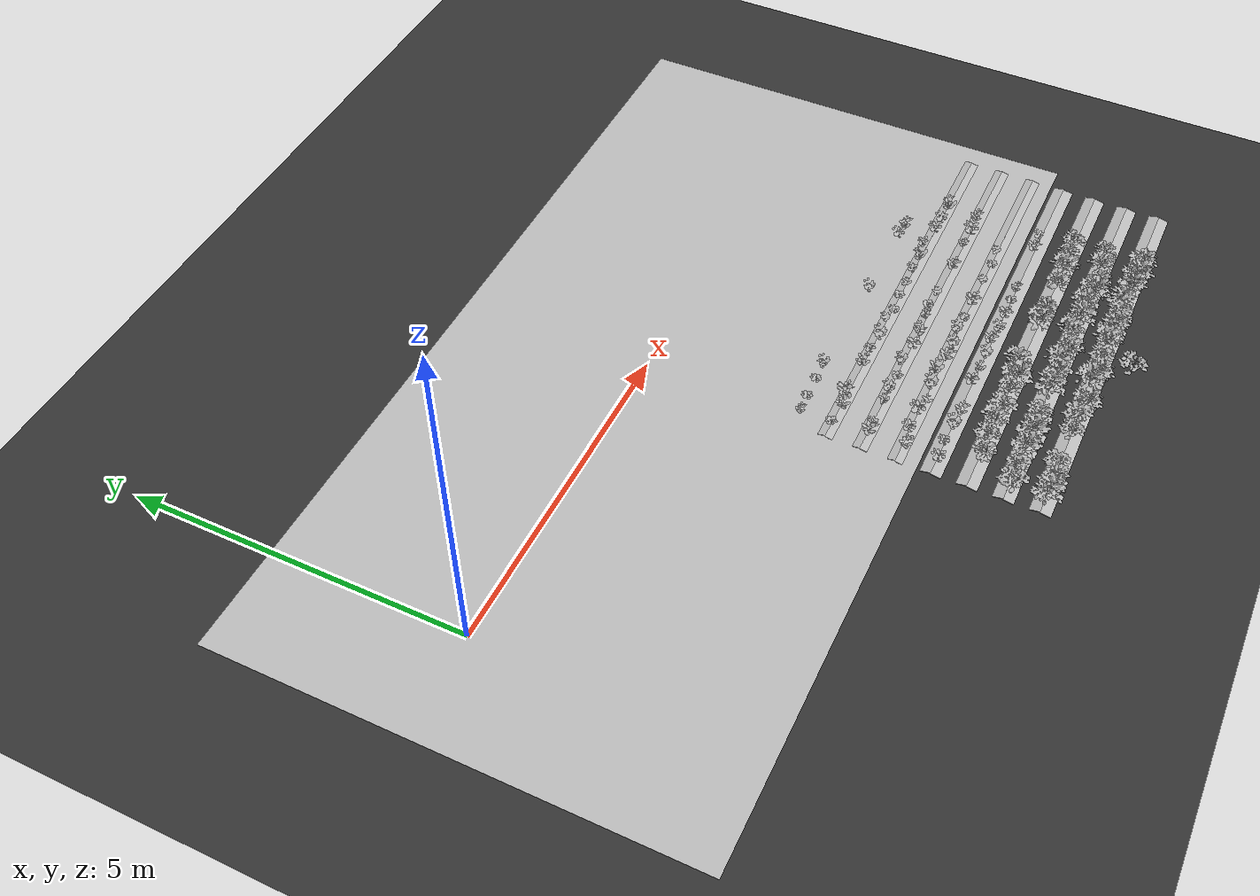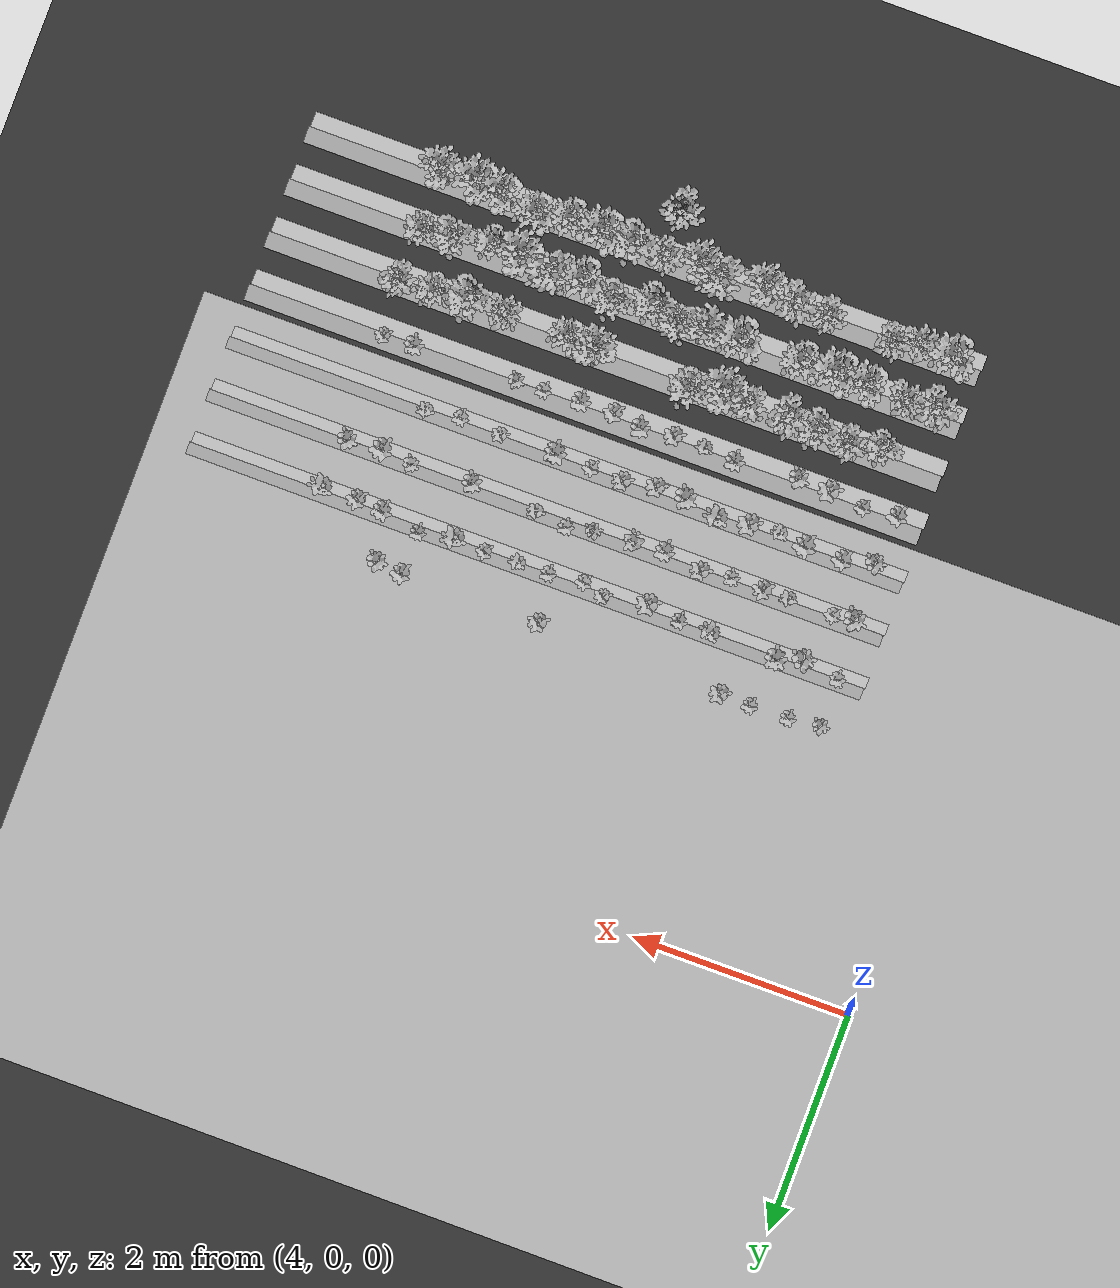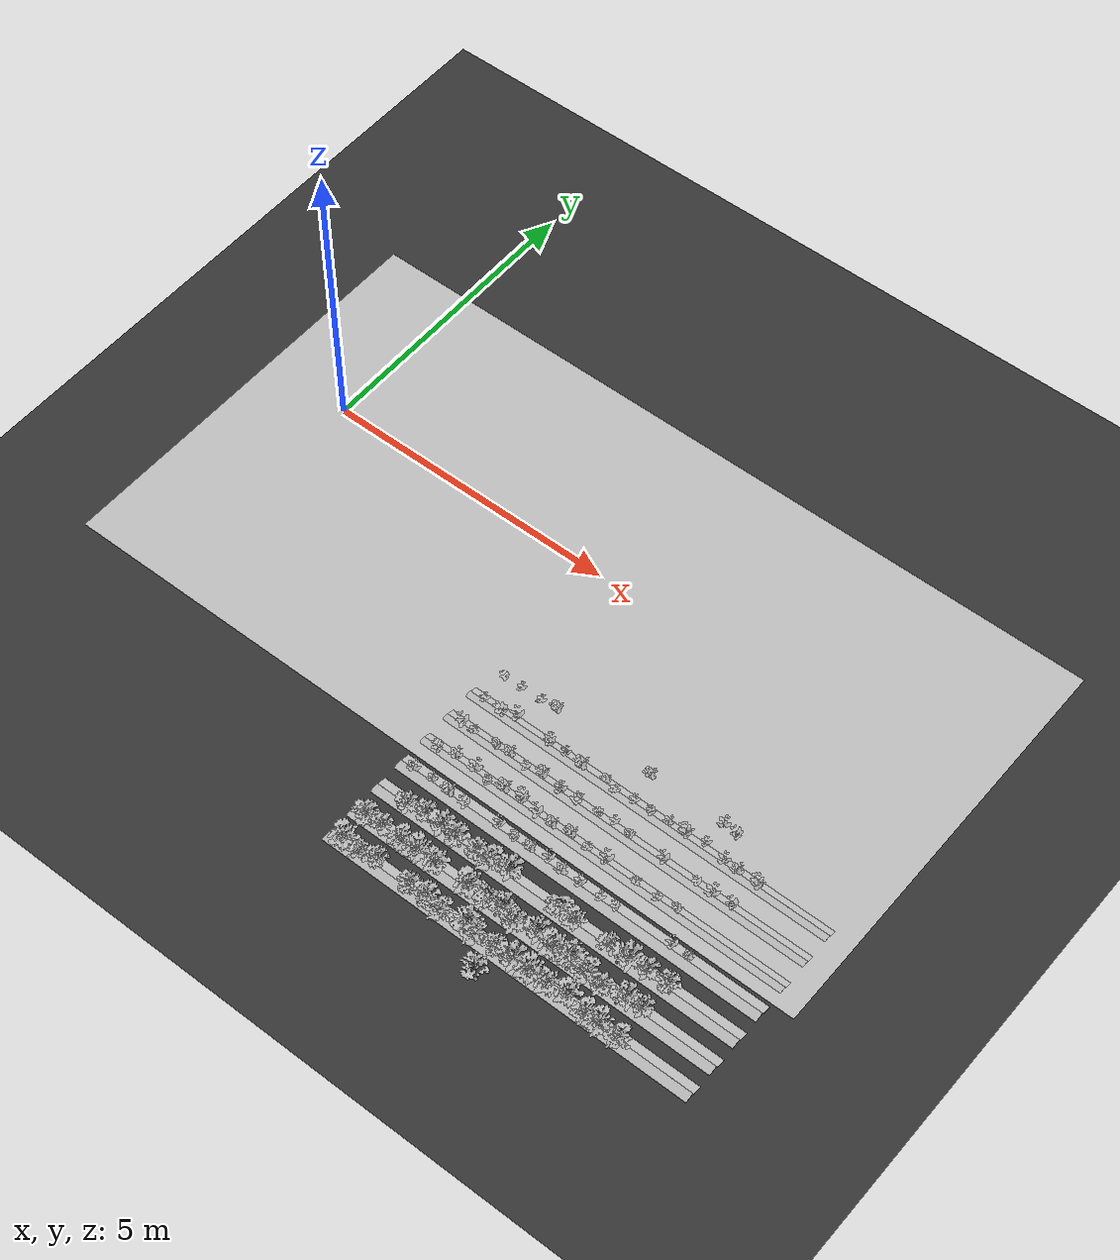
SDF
<sdf version="1.7">
 <world name="default">
  <model name="ground_plane">
   <static>1</static>
   <link name="link">
    <collision name="collision">
     <geometry><plane><normal>0 0 1</normal><size>100 100</size></plane></geometry>
     <surface>
      <contact><collide_bitmask>65535</collide_bitmask></contact>
      <friction><ode><mu>100</mu><mu2>50</mu2></ode></friction>
     </surface>
    </collision>
    <visual name="visual">
     <cast_shadows>0</cast_shadows>
     <geometry><plane><normal>0 0 1</normal><size>100 100</size></plane></geometry>
     <material>
      <ambient>0.2 0.2 0.2 1.0</ambient>
      <diffuse>0.2 0.2 0.2 1.0</diffuse>
      <specular>0.2 0.2 0.2 1.0</specular>
      <emissive>0.2 0.2 0.2 1.0</emissive>
     </material>
    </visual>
   </link>
  </model>
  <model name="ground">
   <pose>5 -0.5 0.01  3.141592654 0 0</pose>
   <static>true</static>
   <link name="body">
    <visual name="visual">
     <cast_shadows>0</cast_shadows>
     <geometry>
      <mesh><uri>file:///home/ifcosta/final_ws/src/cnn_line/worlds/models/ground.obj</uri></mesh>
     </geometry>
    </visual>
   </link>
  </model>
  <model name="plt_10017">
   <pose>5.1 -4.27 0.0129 0.0 0.0 0.11031</pose>
   <static>true</static>
   <link name="body">
    <visual name="visual">
     <geometry>
      <mesh><uri>file:///home/ifcosta/final_ws/src/cnn_line/worlds/models/plant12.obj</uri></mesh>
     </geometry>
    </visual>
   </link>
  </model>
  <model name="plt_10018">
   <pose>5.41 -4.24 0.0167 0.0 0.0 0.10898</pose>
   <static>true</static>
   <link name="body">
    <visual name="visual">
     <geometry>
      <mesh><uri>file:///home/ifcosta/final_ws/src/cnn_line/worlds/models/plant11.obj</uri></mesh>
     </geometry>
    </visual>
   </link>
  </model>
  <model name="plt_10019">
   <pose>5.73 -4.27 0.012 0.0 0.0 -0.63378</pose>
   <static>true</static>
   <link name="body">
    <visual name="visual">
     <geometry>
      <mesh><uri>file:///home/ifcosta/final_ws/src/cnn_line/worlds/models/plant13.obj</uri></mesh>
     </geometry>
    </visual>
   </link>
  </model>
  <model name="plt_10020">
   <pose>6.03 -4.28 0.0152 0.0 0.0 1.1343</pose>
   <static>true</static>
   <link name="body">
    <visual name="visual">
     <geometry>
      <mesh><uri>file:///home/ifcosta/final_ws/src/cnn_line/worlds/models/plant12.obj</uri></mesh>
     </geometry>
    </visual>
   </link>
  </model>
  <model name="plt_10022">
   <pose>6.61 -4.23 0.0153 0.0 0.0 0.51671</pose>
   <static>true</static>
   <link name="body">
    <visual name="visual">
     <geometry>
      <mesh><uri>file:///home/ifcosta/final_ws/src/cnn_line/worlds/models/plant12.obj</uri></mesh>
     </geometry>
    </visual>
   </link>
  </model>
  <model name="plt_10023">
   <pose>6.89 -4.26 0.0155 0.0 0.0 -1.4487</pose>
   <static>true</static>
   <link name="body">
    <visual name="visual">
     <geometry>
      <mesh><uri>file:///home/ifcosta/final_ws/src/cnn_line/worlds/models/plant11.obj</uri></mesh>
     </geometry>
    </visual>
   </link>
  </model>
  <model name="plt_10024">
   <pose>7.18 -4.26 0.0155 0.0 0.0 -0.59258</pose>
   <static>true</static>
   <link name="body">
    <visual name="visual">
     <geometry>
      <mesh><uri>file:///home/ifcosta/final_ws/src/cnn_line/worlds/models/plant12.obj</uri></mesh>
     </geometry>
    </visual>
   </link>
  </model>
  <model name="plt_10025">
   <pose>7.49 -4.22 0.0176 0.0 0.0 0.74149</pose>
   <static>true</static>
   <link name="body">
    <visual name="visual">
     <geometry>
      <mesh><uri>file:///home/ifcosta/final_ws/src/cnn_line/worlds/models/plant12.obj</uri></mesh>
     </geometry>
    </visual>
   </link>
  </model>
  <model name="plt_10026">
   <pose>7.75 -4.27 0.0115 0.0 0.0 -0.22559</pose>
   <static>true</static>
   <link name="body">
    <visual name="visual">
     <geometry>
      <mesh><uri>file:///home/ifcosta/final_ws/src/cnn_line/worlds/models/plant12.obj</uri></mesh>
     </geometry>
    </visual>
   </link>
  </model>
  <model name="plt_10027">
   <pose>8.06 -4.26 0.0198 0.0 0.0 0.52255</pose>
   <static>true</static>
   <link name="body">
    <visual name="visual">
     <geometry>
      <mesh><uri>file:///home/ifcosta/final_ws/src/cnn_line/worlds/models/plant12.obj</uri></mesh>
     </geometry>
    </visual>
   </link>
  </model>
  <model name="plt_10028">
   <pose>8.4 -4.25 0.0158 0.0 0.0 0.34888</pose>
   <static>true</static>
   <link name="body">
    <visual name="visual">
     <geometry>
      <mesh><uri>file:///home/ifcosta/final_ws/src/cnn_line/worlds/models/plant10.obj</uri></mesh>
     </geometry>
    </visual>
   </link>
  </model>
  <model name="plt_10029">
   <pose>8.66 -4.24 0.0158 0.0 0.0 1.1464</pose>
   <static>true</static>
   <link name="body">
    <visual name="visual">
     <geometry>
      <mesh><uri>file:///home/ifcosta/final_ws/src/cnn_line/worlds/models/plant11.obj</uri></mesh>
     </geometry>
    </visual>
   </link>
  </model>
  <model name="plt_10032">
   <pose>9.61 -4.22 0.014 0.0 0.0 0.66716</pose>
   <static>true</static>
   <link name="body">
    <visual name="visual">
     <geometry>
      <mesh><uri>file:///home/ifcosta/final_ws/src/cnn_line/worlds/models/plant12.obj</uri></mesh>
     </geometry>
    </visual>
   </link>
  </model>
  <model name="plt_10033">
   <pose>9.89 -4.22 0.014 0.0 0.0 -0.3081</pose>
   <static>true</static>
   <link name="body">
    <visual name="visual">
     <geometry>
      <mesh><uri>file:///home/ifcosta/final_ws/src/cnn_line/worlds/models/plant11.obj</uri></mesh>
     </geometry>
    </visual>
   </link>
  </model>
  <model name="slope_434">
   <pose>8.0 -4.25 -0.005 0.0 0.0 0.0</pose>
   <static>true</static>
   <link name="body">
    <visual name="visual">
     <geometry>
      <mesh><uri>file:///home/ifcosta/final_ws/src/cnn_line/worlds/models/slope.obj</uri></mesh>
     </geometry>
    </visual>
   </link>
  </model>
  <model name="slope_534">
   <pose>8.0 -4.25 -0.005 0.0 0.0 3.1416</pose>
   <static>true</static>
   <link name="body">
    <visual name="visual">
     <geometry>
      <mesh><uri>file:///home/ifcosta/final_ws/src/cnn_line/worlds/models/slope.obj</uri></mesh>
     </geometry>
    </visual>
   </link>
  </model>
  <model name="plt_10051">
   <pose>5.14 -3.8 0.0164 0.0 0.0 1.5601</pose>
   <static>true</static>
   <link name="body">
    <visual name="visual">
     <geometry>
      <mesh><uri>file:///home/ifcosta/final_ws/src/cnn_line/worlds/models/plant12.obj</uri></mesh>
     </geometry>
    </visual>
   </link>
  </model>
  <model name="plt_10052">
   <pose>5.42 -3.74 0.0171 0.0 0.0 -0.0023712</pose>
   <static>true</static>
   <link name="body">
    <visual name="visual">
     <geometry>
      <mesh><uri>file:///home/ifcosta/final_ws/src/cnn_line/worlds/models/plant12.obj</uri></mesh>
     </geometry>
    </visual>
   </link>
  </model>
  <model name="plt_10053">
   <pose>5.77 -3.74 0.0141 0.0 0.0 0.089069</pose>
   <static>true</static>
   <link name="body">
    <visual name="visual">
     <geometry>
      <mesh><uri>file:///home/ifcosta/final_ws/src/cnn_line/worlds/models/plant13.obj</uri></mesh>
     </geometry>
    </visual>
   </link>
  </model>
  <model name="plt_10054">
   <pose>6.01 -3.78 0.0155 0.0 0.0 -1.603</pose>
   <static>true</static>
   <link name="body">
    <visual name="visual">
     <geometry>
      <mesh><uri>file:///home/ifcosta/final_ws/src/cnn_line/worlds/models/plant10.obj</uri></mesh>
     </geometry>
    </visual>
   </link>
  </model>
  <model name="plt_10055">
   <pose>6.29 -3.75 0.015 0.0 0.0 -0.609</pose>
   <static>true</static>
   <link name="body">
    <visual name="visual">
     <geometry>
      <mesh><uri>file:///home/ifcosta/final_ws/src/cnn_line/worlds/models/plant13.obj</uri></mesh>
     </geometry>
    </visual>
   </link>
  </model>
  <model name="plt_10056">
   <pose>6.58 -3.71 0.0156 0.0 0.0 -1.4947</pose>
   <static>true</static>
   <link name="body">
    <visual name="visual">
     <geometry>
      <mesh><uri>file:///home/ifcosta/final_ws/src/cnn_line/worlds/models/plant13.obj</uri></mesh>
     </geometry>
    </visual>
   </link>
  </model>
  <model name="plt_10057">
   <pose>6.9 -3.77 0.0161 0.0 0.0 0.98929</pose>
   <static>true</static>
   <link name="body">
    <visual name="visual">
     <geometry>
      <mesh><uri>file:///home/ifcosta/final_ws/src/cnn_line/worlds/models/plant13.obj</uri></mesh>
     </geometry>
    </visual>
   </link>
  </model>
  <model name="plt_10058">
   <pose>7.17 -3.78 0.016 0.0 0.0 -0.61877</pose>
   <static>true</static>
   <link name="body">
    <visual name="visual">
     <geometry>
      <mesh><uri>file:///home/ifcosta/final_ws/src/cnn_line/worlds/models/plant12.obj</uri></mesh>
     </geometry>
    </visual>
   </link>
  </model>
  <model name="plt_10059">
   <pose>7.47 -3.73 0.0152 0.0 0.0 -0.60778</pose>
   <static>true</static>
   <link name="body">
    <visual name="visual">
     <geometry>
      <mesh><uri>file:///home/ifcosta/final_ws/src/cnn_line/worlds/models/plant12.obj</uri></mesh>
     </geometry>
    </visual>
   </link>
  </model>
  <model name="plt_10060">
   <pose>7.77 -3.75 0.014 0.0 0.0 0.033476</pose>
   <static>true</static>
   <link name="body">
    <visual name="visual">
     <geometry>
      <mesh><uri>file:///home/ifcosta/final_ws/src/cnn_line/worlds/models/plant10.obj</uri></mesh>
     </geometry>
    </visual>
   </link>
  </model>
  <model name="plt_10061">
   <pose>8.11 -3.75 0.0173 0.0 0.0 0.56324</pose>
   <static>true</static>
   <link name="body">
    <visual name="visual">
     <geometry>
      <mesh><uri>file:///home/ifcosta/final_ws/src/cnn_line/worlds/models/plant13.obj</uri></mesh>
     </geometry>
    </visual>
   </link>
  </model>
  <model name="plt_10063">
   <pose>8.62 -3.75 0.0153 0.0 0.0 -0.6554</pose>
   <static>true</static>
   <link name="body">
    <visual name="visual">
     <geometry>
      <mesh><uri>file:///home/ifcosta/final_ws/src/cnn_line/worlds/models/plant10.obj</uri></mesh>
     </geometry>
    </visual>
   </link>
  </model>
  <model name="plt_10064">
   <pose>9.0 -3.77 0.0196 0.0 0.0 0.34951</pose>
   <static>true</static>
   <link name="body">
    <visual name="visual">
     <geometry>
      <mesh><uri>file:///home/ifcosta/final_ws/src/cnn_line/worlds/models/plant10.obj</uri></mesh>
     </geometry>
    </visual>
   </link>
  </model>
  <model name="plt_10065">
   <pose>9.31 -3.73 0.0123 0.0 0.0 -1.0946</pose>
   <static>true</static>
   <link name="body">
    <visual name="visual">
     <geometry>
      <mesh><uri>file:///home/ifcosta/final_ws/src/cnn_line/worlds/models/plant10.obj</uri></mesh>
     </geometry>
    </visual>
   </link>
  </model>
  <model name="slope_468">
   <pose>8.0 -3.75 -0.005 0.0 0.0 0.0</pose>
   <static>true</static>
   <link name="body">
    <visual name="visual">
     <geometry>
      <mesh><uri>file:///home/ifcosta/final_ws/src/cnn_line/worlds/models/slope.obj</uri></mesh>
     </geometry>
    </visual>
   </link>
  </model>
  <model name="slope_568">
   <pose>8.0 -3.75 -0.005 0.0 0.0 3.1416</pose>
   <static>true</static>
   <link name="body">
    <visual name="visual">
     <geometry>
      <mesh><uri>file:///home/ifcosta/final_ws/src/cnn_line/worlds/models/slope.obj</uri></mesh>
     </geometry>
    </visual>
   </link>
  </model>
  <model name="plt_10085">
   <pose>5.14 -3.27 0.0163 0.0 0.0 1.1297</pose>
   <static>true</static>
   <link name="body">
    <visual name="visual">
     <geometry>
      <mesh><uri>file:///home/ifcosta/final_ws/src/cnn_line/worlds/models/plant13.obj</uri></mesh>
     </geometry>
    </visual>
   </link>
  </model>
  <model name="plt_10086">
   <pose>5.33 -3.26 0.0139 0.0 0.0 -0.073709</pose>
   <static>true</static>
   <link name="body">
    <visual name="visual">
     <geometry>
      <mesh><uri>file:///home/ifcosta/final_ws/src/cnn_line/worlds/models/plant10.obj</uri></mesh>
     </geometry>
    </visual>
   </link>
  </model>
  <model name="plt_10087">
   <pose>5.74 -3.26 0.0161 0.0 0.0 -1.1449</pose>
   <static>true</static>
   <link name="body">
    <visual name="visual">
     <geometry>
      <mesh><uri>file:///home/ifcosta/final_ws/src/cnn_line/worlds/models/plant11.obj</uri></mesh>
     </geometry>
    </visual>
   </link>
  </model>
  <model name="plt_10088">
   <pose>5.98 -3.25 0.0138 0.0 0.0 -0.32739</pose>
   <static>true</static>
   <link name="body">
    <visual name="visual">
     <geometry>
      <mesh><uri>file:///home/ifcosta/final_ws/src/cnn_line/worlds/models/plant12.obj</uri></mesh>
     </geometry>
    </visual>
   </link>
  </model>
  <model name="plt_10089">
   <pose>6.28 -3.26 0.012 0.0 0.0 0.69733</pose>
   <static>true</static>
   <link name="body">
    <visual name="visual">
     <geometry>
      <mesh><uri>file:///home/ifcosta/final_ws/src/cnn_line/worlds/models/plant10.obj</uri></mesh>
     </geometry>
    </visual>
   </link>
  </model>
  <model name="plt_10090">
   <pose>6.55 -3.22 0.0124 0.0 0.0 -0.75371</pose>
   <static>true</static>
   <link name="body">
    <visual name="visual">
     <geometry>
      <mesh><uri>file:///home/ifcosta/final_ws/src/cnn_line/worlds/models/plant12.obj</uri></mesh>
     </geometry>
    </visual>
   </link>
  </model>
  <model name="plt_10091">
   <pose>6.91 -3.27 0.0171 0.0 0.0 0.43154</pose>
   <static>true</static>
   <link name="body">
    <visual name="visual">
     <geometry>
      <mesh><uri>file:///home/ifcosta/final_ws/src/cnn_line/worlds/models/plant12.obj</uri></mesh>
     </geometry>
    </visual>
   </link>
  </model>
  <model name="plt_10092">
   <pose>7.19 -3.25 0.016 0.0 0.0 3.2665</pose>
   <static>true</static>
   <link name="body">
    <visual name="visual">
     <geometry>
      <mesh><uri>file:///home/ifcosta/final_ws/src/cnn_line/worlds/models/plant12.obj</uri></mesh>
     </geometry>
    </visual>
   </link>
  </model>
  <model name="plt_10093">
   <pose>7.56 -3.22 0.0167 0.0 0.0 1.775</pose>
   <static>true</static>
   <link name="body">
    <visual name="visual">
     <geometry>
      <mesh><uri>file:///home/ifcosta/final_ws/src/cnn_line/worlds/models/plant11.obj</uri></mesh>
     </geometry>
    </visual>
   </link>
  </model>
  <model name="plt_10094">
   <pose>7.8 -3.18 0.015 0.0 0.0 0.58934</pose>
   <static>true</static>
   <link name="body">
    <visual name="visual">
     <geometry>
      <mesh><uri>file:///home/ifcosta/final_ws/src/cnn_line/worlds/models/plant10.obj</uri></mesh>
     </geometry>
    </visual>
   </link>
  </model>
  <model name="plt_20094">
   <pose>7.8 -6.18 0.015 0.0 0.0 1.7887</pose>
   <static>true</static>
   <link name="body">
    <visual name="visual">
     <geometry>
      <mesh><uri>file:///home/ifcosta/final_ws/src/cnn_line/worlds/models/plant21.obj</uri></mesh>
     </geometry>
    </visual>
   </link>
  </model>
  <model name="plt_10095">
   <pose>8.09 -3.22 0.0172 0.0 0.0 -0.97627</pose>
   <static>true</static>
   <link name="body">
    <visual name="visual">
     <geometry>
      <mesh><uri>file:///home/ifcosta/final_ws/src/cnn_line/worlds/models/plant10.obj</uri></mesh>
     </geometry>
    </visual>
   </link>
  </model>
  <model name="plt_10097">
   <pose>8.71 -3.25 0.0126 0.0 0.0 0.91126</pose>
   <static>true</static>
   <link name="body">
    <visual name="visual">
     <geometry>
      <mesh><uri>file:///home/ifcosta/final_ws/src/cnn_line/worlds/models/plant12.obj</uri></mesh>
     </geometry>
    </visual>
   </link>
  </model>
  <model name="plt_10099">
   <pose>9.27 -3.23 0.0146 0.0 0.0 1.0455</pose>
   <static>true</static>
   <link name="body">
    <visual name="visual">
     <geometry>
      <mesh><uri>file:///home/ifcosta/final_ws/src/cnn_line/worlds/models/plant10.obj</uri></mesh>
     </geometry>
    </visual>
   </link>
  </model>
  <model name="plt_10100">
   <pose>9.55 -3.26 0.0164 0.0 0.0 0.11065</pose>
   <static>true</static>
   <link name="body">
    <visual name="visual">
     <geometry>
      <mesh><uri>file:///home/ifcosta/final_ws/src/cnn_line/worlds/models/plant13.obj</uri></mesh>
     </geometry>
    </visual>
   </link>
  </model>
  <model name="plt_10101">
   <pose>9.87 -3.23 0.0153 0.0 0.0 1.1529</pose>
   <static>true</static>
   <link name="body">
    <visual name="visual">
     <geometry>
      <mesh><uri>file:///home/ifcosta/final_ws/src/cnn_line/worlds/models/plant12.obj</uri></mesh>
     </geometry>
    </visual>
   </link>
  </model>
  <model name="slope_502">
   <pose>8.0 -3.25 -0.005 0.0 0.0 0.0</pose>
   <static>true</static>
   <link name="body">
    <visual name="visual">
     <geometry>
      <mesh><uri>file:///home/ifcosta/final_ws/src/cnn_line/worlds/models/slope.obj</uri></mesh>
     </geometry>
    </visual>
   </link>
  </model>
  <model name="slope_602">
   <pose>8.0 -3.25 -0.005 0.0 0.0 3.1416</pose>
   <static>true</static>
   <link name="body">
    <visual name="visual">
     <geometry>
      <mesh><uri>file:///home/ifcosta/final_ws/src/cnn_line/worlds/models/slope.obj</uri></mesh>
     </geometry>
    </visual>
   </link>
  </model>
  <model name="plt_10119">
   <pose>5.1 -2.74 0.017 0.0 0.0 0.54522</pose>
   <static>true</static>
   <link name="body">
    <visual name="visual">
     <geometry>
      <mesh><uri>file:///home/ifcosta/final_ws/src/cnn_line/worlds/models/plant10.obj</uri></mesh>
     </geometry>
    </visual>
   </link>
  </model>
  <model name="plt_20119">
   <pose>5.1 -5.74 0.017 0.0 0.0 0.064601</pose>
   <static>true</static>
   <link name="body">
    <visual name="visual">
     <geometry>
      <mesh><uri>file:///home/ifcosta/final_ws/src/cnn_line/worlds/models/plant22.obj</uri></mesh>
     </geometry>
    </visual>
   </link>
  </model>
  <model name="plt_10120">
   <pose>5.44 -2.78 0.0122 0.0 0.0 1.6965</pose>
   <static>true</static>
   <link name="body">
    <visual name="visual">
     <geometry>
      <mesh><uri>file:///home/ifcosta/final_ws/src/cnn_line/worlds/models/plant13.obj</uri></mesh>
     </geometry>
    </visual>
   </link>
  </model>
  <model name="plt_20120">
   <pose>5.44 -5.78 0.0122 0.0 0.0 2.2285</pose>
   <static>true</static>
   <link name="body">
    <visual name="visual">
     <geometry>
      <mesh><uri>file:///home/ifcosta/final_ws/src/cnn_line/worlds/models/plant20.obj</uri></mesh>
     </geometry>
    </visual>
   </link>
  </model>
  <model name="plt_10121">
   <pose>5.67 -2.71 0.0162 0.0 0.0 0.72011</pose>
   <static>true</static>
   <link name="body">
    <visual name="visual">
     <geometry>
      <mesh><uri>file:///home/ifcosta/final_ws/src/cnn_line/worlds/models/plant13.obj</uri></mesh>
     </geometry>
    </visual>
   </link>
  </model>
  <model name="plt_20121">
   <pose>5.67 -5.71 0.0162 0.0 0.0 1.378</pose>
   <static>true</static>
   <link name="body">
    <visual name="visual">
     <geometry>
      <mesh><uri>file:///home/ifcosta/final_ws/src/cnn_line/worlds/models/plant20.obj</uri></mesh>
     </geometry>
    </visual>
   </link>
  </model>
  <model name="plt_10123">
   <pose>6.28 -2.74 0.0147 0.0 0.0 -1.8378</pose>
   <static>true</static>
   <link name="body">
    <visual name="visual">
     <geometry>
      <mesh><uri>file:///home/ifcosta/final_ws/src/cnn_line/worlds/models/plant12.obj</uri></mesh>
     </geometry>
    </visual>
   </link>
  </model>
  <model name="plt_20123">
   <pose>6.28 -5.74 0.0147 0.0 0.0 1.0146</pose>
   <static>true</static>
   <link name="body">
    <visual name="visual">
     <geometry>
      <mesh><uri>file:///home/ifcosta/final_ws/src/cnn_line/worlds/models/plant20.obj</uri></mesh>
     </geometry>
    </visual>
   </link>
  </model>
  <model name="plt_10124">
   <pose>6.58 -2.74 0.0153 0.0 0.0 0.38056</pose>
   <static>true</static>
   <link name="body">
    <visual name="visual">
     <geometry>
      <mesh><uri>file:///home/ifcosta/final_ws/src/cnn_line/worlds/models/plant11.obj</uri></mesh>
     </geometry>
    </visual>
   </link>
  </model>
  <model name="plt_20124">
   <pose>6.58 -5.74 0.0153 0.0 0.0 2.2212</pose>
   <static>true</static>
   <link name="body">
    <visual name="visual">
     <geometry>
      <mesh><uri>file:///home/ifcosta/final_ws/src/cnn_line/worlds/models/plant21.obj</uri></mesh>
     </geometry>
    </visual>
   </link>
  </model>
  <model name="plt_10125">
   <pose>6.88 -2.78 0.0126 0.0 0.0 -0.57333</pose>
   <static>true</static>
   <link name="body">
    <visual name="visual">
     <geometry>
      <mesh><uri>file:///home/ifcosta/final_ws/src/cnn_line/worlds/models/plant13.obj</uri></mesh>
     </geometry>
    </visual>
   </link>
  </model>
  <model name="plt_20125">
   <pose>6.88 -5.78 0.0126 0.0 0.0 -1.4349</pose>
   <static>true</static>
   <link name="body">
    <visual name="visual">
     <geometry>
      <mesh><uri>file:///home/ifcosta/final_ws/src/cnn_line/worlds/models/plant21.obj</uri></mesh>
     </geometry>
    </visual>
   </link>
  </model>
  <model name="plt_10126">
   <pose>7.28 -2.72 0.0137 0.0 0.0 -0.49948</pose>
   <static>true</static>
   <link name="body">
    <visual name="visual">
     <geometry>
      <mesh><uri>file:///home/ifcosta/final_ws/src/cnn_line/worlds/models/plant10.obj</uri></mesh>
     </geometry>
    </visual>
   </link>
  </model>
  <model name="plt_20126">
   <pose>7.28 -5.72 0.0137 0.0 0.0 1.8079</pose>
   <static>true</static>
   <link name="body">
    <visual name="visual">
     <geometry>
      <mesh><uri>file:///home/ifcosta/final_ws/src/cnn_line/worlds/models/plant22.obj</uri></mesh>
     </geometry>
    </visual>
   </link>
  </model>
  <model name="plt_10127">
   <pose>7.48 -2.78 0.0137 0.0 0.0 0.036919</pose>
   <static>true</static>
   <link name="body">
    <visual name="visual">
     <geometry>
      <mesh><uri>file:///home/ifcosta/final_ws/src/cnn_line/worlds/models/plant10.obj</uri></mesh>
     </geometry>
    </visual>
   </link>
  </model>
  <model name="plt_20127">
   <pose>7.48 -5.78 0.0137 0.0 0.0 -1.3525</pose>
   <static>true</static>
   <link name="body">
    <visual name="visual">
     <geometry>
      <mesh><uri>file:///home/ifcosta/final_ws/src/cnn_line/worlds/models/plant21.obj</uri></mesh>
     </geometry>
    </visual>
   </link>
  </model>
  <model name="plt_10128">
   <pose>7.8 -2.74 0.0154 0.0 0.0 0.47096</pose>
   <static>true</static>
   <link name="body">
    <visual name="visual">
     <geometry>
      <mesh><uri>file:///home/ifcosta/final_ws/src/cnn_line/worlds/models/plant10.obj</uri></mesh>
     </geometry>
    </visual>
   </link>
  </model>
  <model name="plt_20128">
   <pose>7.8 -5.74 0.0154 0.0 0.0 1.2598</pose>
   <static>true</static>
   <link name="body">
    <visual name="visual">
     <geometry>
      <mesh><uri>file:///home/ifcosta/final_ws/src/cnn_line/worlds/models/plant20.obj</uri></mesh>
     </geometry>
    </visual>
   </link>
  </model>
  <model name="plt_10129">
   <pose>8.08 -2.74 0.0173 0.0 0.0 -1.4767</pose>
   <static>true</static>
   <link name="body">
    <visual name="visual">
     <geometry>
      <mesh><uri>file:///home/ifcosta/final_ws/src/cnn_line/worlds/models/plant10.obj</uri></mesh>
     </geometry>
    </visual>
   </link>
  </model>
  <model name="plt_20129">
   <pose>8.08 -5.74 0.0173 0.0 0.0 0.85855</pose>
   <static>true</static>
   <link name="body">
    <visual name="visual">
     <geometry>
      <mesh><uri>file:///home/ifcosta/final_ws/src/cnn_line/worlds/models/plant22.obj</uri></mesh>
     </geometry>
    </visual>
   </link>
  </model>
  <model name="plt_10130">
   <pose>8.39 -2.73 0.0108 0.0 0.0 -0.14243</pose>
   <static>true</static>
   <link name="body">
    <visual name="visual">
     <geometry>
      <mesh><uri>file:///home/ifcosta/final_ws/src/cnn_line/worlds/models/plant11.obj</uri></mesh>
     </geometry>
    </visual>
   </link>
  </model>
  <model name="plt_20130">
   <pose>8.39 -5.73 0.0108 0.0 0.0 -0.083382</pose>
   <static>true</static>
   <link name="body">
    <visual name="visual">
     <geometry>
      <mesh><uri>file:///home/ifcosta/final_ws/src/cnn_line/worlds/models/plant22.obj</uri></mesh>
     </geometry>
    </visual>
   </link>
  </model>
  <model name="plt_10131">
   <pose>8.68 -2.74 0.0159 0.0 0.0 -1.1712</pose>
   <static>true</static>
   <link name="body">
    <visual name="visual">
     <geometry>
      <mesh><uri>file:///home/ifcosta/final_ws/src/cnn_line/worlds/models/plant13.obj</uri></mesh>
     </geometry>
    </visual>
   </link>
  </model>
  <model name="plt_20131">
   <pose>8.68 -5.74 0.0159 0.0 0.0 -0.36344</pose>
   <static>true</static>
   <link name="body">
    <visual name="visual">
     <geometry>
      <mesh><uri>file:///home/ifcosta/final_ws/src/cnn_line/worlds/models/plant21.obj</uri></mesh>
     </geometry>
    </visual>
   </link>
  </model>
  <model name="plt_10132">
   <pose>9.0 -2.68 0.0154 0.0 0.0 0.49364</pose>
   <static>true</static>
   <link name="body">
    <visual name="visual">
     <geometry>
      <mesh><uri>file:///home/ifcosta/final_ws/src/cnn_line/worlds/models/plant11.obj</uri></mesh>
     </geometry>
    </visual>
   </link>
  </model>
  <model name="plt_20132">
   <pose>9.0 -5.68 0.0154 0.0 0.0 -0.54308</pose>
   <static>true</static>
   <link name="body">
    <visual name="visual">
     <geometry>
      <mesh><uri>file:///home/ifcosta/final_ws/src/cnn_line/worlds/models/plant21.obj</uri></mesh>
     </geometry>
    </visual>
   </link>
  </model>
  <model name="plt_10133">
   <pose>9.36 -2.75 0.0143 0.0 0.0 0.25934</pose>
   <static>true</static>
   <link name="body">
    <visual name="visual">
     <geometry>
      <mesh><uri>file:///home/ifcosta/final_ws/src/cnn_line/worlds/models/plant12.obj</uri></mesh>
     </geometry>
    </visual>
   </link>
  </model>
  <model name="plt_20133">
   <pose>9.36 -5.75 0.0143 0.0 0.0 -1.0471</pose>
   <static>true</static>
   <link name="body">
    <visual name="visual">
     <geometry>
      <mesh><uri>file:///home/ifcosta/final_ws/src/cnn_line/worlds/models/plant21.obj</uri></mesh>
     </geometry>
    </visual>
   </link>
  </model>
  <model name="plt_10134">
   <pose>9.6 -2.77 0.0186 0.0 0.0 -0.18332</pose>
   <static>true</static>
   <link name="body">
    <visual name="visual">
     <geometry>
      <mesh><uri>file:///home/ifcosta/final_ws/src/cnn_line/worlds/models/plant12.obj</uri></mesh>
     </geometry>
    </visual>
   </link>
  </model>
  <model name="plt_20134">
   <pose>9.6 -5.77 0.0186 0.0 0.0 -0.38918</pose>
   <static>true</static>
   <link name="body">
    <visual name="visual">
     <geometry>
      <mesh><uri>file:///home/ifcosta/final_ws/src/cnn_line/worlds/models/plant22.obj</uri></mesh>
     </geometry>
    </visual>
   </link>
  </model>
  <model name="plt_10135">
   <pose>9.93 -2.77 0.0165 0.0 0.0 -1.4356</pose>
   <static>true</static>
   <link name="body">
    <visual name="visual">
     <geometry>
      <mesh><uri>file:///home/ifcosta/final_ws/src/cnn_line/worlds/models/plant13.obj</uri></mesh>
     </geometry>
    </visual>
   </link>
  </model>
  <model name="plt_20135">
   <pose>9.93 -5.77 0.0165 0.0 0.0 -1.3645</pose>
   <static>true</static>
   <link name="body">
    <visual name="visual">
     <geometry>
      <mesh><uri>file:///home/ifcosta/final_ws/src/cnn_line/worlds/models/plant21.obj</uri></mesh>
     </geometry>
    </visual>
   </link>
  </model>
  <model name="slope_536">
   <pose>8.0 -2.75 -0.005 0.0 0.0 0.0</pose>
   <static>true</static>
   <link name="body">
    <visual name="visual">
     <geometry>
      <mesh><uri>file:///home/ifcosta/final_ws/src/cnn_line/worlds/models/slope.obj</uri></mesh>
     </geometry>
    </visual>
   </link>
  </model>
  <model name="slope_636">
   <pose>8.0 -2.75 -0.005 0.0 0.0 3.1416</pose>
   <static>true</static>
   <link name="body">
    <visual name="visual">
     <geometry>
      <mesh><uri>file:///home/ifcosta/final_ws/src/cnn_line/worlds/models/slope.obj</uri></mesh>
     </geometry>
    </visual>
   </link>
  </model>
  <model name="slope_936">
   <pose>8.0 -5.75 -0.005 0.0 0.0 0.0</pose>
   <static>true</static>
   <link name="body">
    <visual name="visual">
     <geometry>
      <mesh><uri>file:///home/ifcosta/final_ws/src/cnn_line/worlds/models/slope.obj</uri></mesh>
     </geometry>
    </visual>
   </link>
  </model>
  <model name="slope_1036">
   <pose>8.0 -5.75 -0.005 0.0 0.0 3.1416</pose>
   <static>true</static>
   <link name="body">
    <visual name="visual">
     <geometry>
      <mesh><uri>file:///home/ifcosta/final_ws/src/cnn_line/worlds/models/slope.obj</uri></mesh>
     </geometry>
    </visual>
   </link>
  </model>
  <model name="plt_10153">
   <pose>5.1 -2.29 0.0173 0.0 0.0 1.4283</pose>
   <static>true</static>
   <link name="body">
    <visual name="visual">
     <geometry>
      <mesh><uri>file:///home/ifcosta/final_ws/src/cnn_line/worlds/models/plant11.obj</uri></mesh>
     </geometry>
    </visual>
   </link>
  </model>
  <model name="plt_20153">
   <pose>5.1 -5.29 0.0173 0.0 0.0 2.1573</pose>
   <static>true</static>
   <link name="body">
    <visual name="visual">
     <geometry>
      <mesh><uri>file:///home/ifcosta/final_ws/src/cnn_line/worlds/models/plant21.obj</uri></mesh>
     </geometry>
    </visual>
   </link>
  </model>
  <model name="plt_10154">
   <pose>5.39 -2.27 0.0154 0.0 0.0 0.42538</pose>
   <static>true</static>
   <link name="body">
    <visual name="visual">
     <geometry>
      <mesh><uri>file:///home/ifcosta/final_ws/src/cnn_line/worlds/models/plant10.obj</uri></mesh>
     </geometry>
    </visual>
   </link>
  </model>
  <model name="plt_20154">
   <pose>5.39 -5.27 0.0154 0.0 0.0 1.7758</pose>
   <static>true</static>
   <link name="body">
    <visual name="visual">
     <geometry>
      <mesh><uri>file:///home/ifcosta/final_ws/src/cnn_line/worlds/models/plant20.obj</uri></mesh>
     </geometry>
    </visual>
   </link>
  </model>
  <model name="plt_10155">
   <pose>5.74 -2.26 0.0122 0.0 0.0 0.24796</pose>
   <static>true</static>
   <link name="body">
    <visual name="visual">
     <geometry>
      <mesh><uri>file:///home/ifcosta/final_ws/src/cnn_line/worlds/models/plant10.obj</uri></mesh>
     </geometry>
    </visual>
   </link>
  </model>
  <model name="plt_20155">
   <pose>5.74 -5.26 0.0122 0.0 0.0 -0.88605</pose>
   <static>true</static>
   <link name="body">
    <visual name="visual">
     <geometry>
      <mesh><uri>file:///home/ifcosta/final_ws/src/cnn_line/worlds/models/plant21.obj</uri></mesh>
     </geometry>
    </visual>
   </link>
  </model>
  <model name="plt_10156">
   <pose>6.02 -2.26 0.0153 0.0 0.0 -0.66879</pose>
   <static>true</static>
   <link name="body">
    <visual name="visual">
     <geometry>
      <mesh><uri>file:///home/ifcosta/final_ws/src/cnn_line/worlds/models/plant12.obj</uri></mesh>
     </geometry>
    </visual>
   </link>
  </model>
  <model name="plt_20156">
   <pose>6.02 -5.26 0.0153 0.0 0.0 -0.097313</pose>
   <static>true</static>
   <link name="body">
    <visual name="visual">
     <geometry>
      <mesh><uri>file:///home/ifcosta/final_ws/src/cnn_line/worlds/models/plant22.obj</uri></mesh>
     </geometry>
    </visual>
   </link>
  </model>
  <model name="plt_20157">
   <pose>6.33 -5.25 0.0133 0.0 0.0 -0.3762</pose>
   <static>true</static>
   <link name="body">
    <visual name="visual">
     <geometry>
      <mesh><uri>file:///home/ifcosta/final_ws/src/cnn_line/worlds/models/plant21.obj</uri></mesh>
     </geometry>
    </visual>
   </link>
  </model>
  <model name="plt_20159">
   <pose>6.91 -5.24 0.0125 0.0 0.0 0.18313</pose>
   <static>true</static>
   <link name="body">
    <visual name="visual">
     <geometry>
      <mesh><uri>file:///home/ifcosta/final_ws/src/cnn_line/worlds/models/plant22.obj</uri></mesh>
     </geometry>
    </visual>
   </link>
  </model>
  <model name="plt_20160">
   <pose>7.25 -5.25 0.016 0.0 0.0 -2.4535</pose>
   <static>true</static>
   <link name="body">
    <visual name="visual">
     <geometry>
      <mesh><uri>file:///home/ifcosta/final_ws/src/cnn_line/worlds/models/plant21.obj</uri></mesh>
     </geometry>
    </visual>
   </link>
  </model>
  <model name="plt_20161">
   <pose>7.49 -5.22 0.0172 0.0 0.0 0.79365</pose>
   <static>true</static>
   <link name="body">
    <visual name="visual">
     <geometry>
      <mesh><uri>file:///home/ifcosta/final_ws/src/cnn_line/worlds/models/plant21.obj</uri></mesh>
     </geometry>
    </visual>
   </link>
  </model>
  <model name="plt_10162">
   <pose>7.73 -2.3 0.0115 0.0 0.0 -0.44403</pose>
   <static>true</static>
   <link name="body">
    <visual name="visual">
     <geometry>
      <mesh><uri>file:///home/ifcosta/final_ws/src/cnn_line/worlds/models/plant12.obj</uri></mesh>
     </geometry>
    </visual>
   </link>
  </model>
  <model name="plt_20162">
   <pose>7.73 -5.3 0.0115 0.0 0.0 0.12899</pose>
   <static>true</static>
   <link name="body">
    <visual name="visual">
     <geometry>
      <mesh><uri>file:///home/ifcosta/final_ws/src/cnn_line/worlds/models/plant21.obj</uri></mesh>
     </geometry>
    </visual>
   </link>
  </model>
  <model name="plt_20163">
   <pose>8.08 -5.2 0.013 0.0 0.0 0.19654</pose>
   <static>true</static>
   <link name="body">
    <visual name="visual">
     <geometry>
      <mesh><uri>file:///home/ifcosta/final_ws/src/cnn_line/worlds/models/plant21.obj</uri></mesh>
     </geometry>
    </visual>
   </link>
  </model>
  <model name="plt_20164">
   <pose>8.4 -5.26 0.0156 0.0 0.0 0.14654</pose>
   <static>true</static>
   <link name="body">
    <visual name="visual">
     <geometry>
      <mesh><uri>file:///home/ifcosta/final_ws/src/cnn_line/worlds/models/plant22.obj</uri></mesh>
     </geometry>
    </visual>
   </link>
  </model>
  <model name="plt_20165">
   <pose>8.7 -5.25 0.0144 0.0 0.0 1.8381</pose>
   <static>true</static>
   <link name="body">
    <visual name="visual">
     <geometry>
      <mesh><uri>file:///home/ifcosta/final_ws/src/cnn_line/worlds/models/plant22.obj</uri></mesh>
     </geometry>
    </visual>
   </link>
  </model>
  <model name="plt_10166">
   <pose>9.01 -2.29 0.0153 0.0 0.0 0.033662</pose>
   <static>true</static>
   <link name="body">
    <visual name="visual">
     <geometry>
      <mesh><uri>file:///home/ifcosta/final_ws/src/cnn_line/worlds/models/plant12.obj</uri></mesh>
     </geometry>
    </visual>
   </link>
  </model>
  <model name="plt_20166">
   <pose>9.01 -5.29 0.0153 0.0 0.0 -0.76301</pose>
   <static>true</static>
   <link name="body">
    <visual name="visual">
     <geometry>
      <mesh><uri>file:///home/ifcosta/final_ws/src/cnn_line/worlds/models/plant22.obj</uri></mesh>
     </geometry>
    </visual>
   </link>
  </model>
  <model name="plt_10167">
   <pose>9.25 -2.31 0.0158 0.0 0.0 1.3426</pose>
   <static>true</static>
   <link name="body">
    <visual name="visual">
     <geometry>
      <mesh><uri>file:///home/ifcosta/final_ws/src/cnn_line/worlds/models/plant12.obj</uri></mesh>
     </geometry>
    </visual>
   </link>
  </model>
  <model name="plt_20167">
   <pose>9.25 -5.31 0.0158 0.0 0.0 -0.87807</pose>
   <static>true</static>
   <link name="body">
    <visual name="visual">
     <geometry>
      <mesh><uri>file:///home/ifcosta/final_ws/src/cnn_line/worlds/models/plant20.obj</uri></mesh>
     </geometry>
    </visual>
   </link>
  </model>
  <model name="plt_20168">
   <pose>9.61 -5.25 0.0155 0.0 0.0 0.5831</pose>
   <static>true</static>
   <link name="body">
    <visual name="visual">
     <geometry>
      <mesh><uri>file:///home/ifcosta/final_ws/src/cnn_line/worlds/models/plant21.obj</uri></mesh>
     </geometry>
    </visual>
   </link>
  </model>
  <model name="plt_20169">
   <pose>9.88 -5.21 0.0154 0.0 0.0 -0.86957</pose>
   <static>true</static>
   <link name="body">
    <visual name="visual">
     <geometry>
      <mesh><uri>file:///home/ifcosta/final_ws/src/cnn_line/worlds/models/plant20.obj</uri></mesh>
     </geometry>
    </visual>
   </link>
  </model>
  <model name="slope_970">
   <pose>8.0 -5.25 -0.005 0.0 0.0 0.0</pose>
   <static>true</static>
   <link name="body">
    <visual name="visual">
     <geometry>
      <mesh><uri>file:///home/ifcosta/final_ws/src/cnn_line/worlds/models/slope.obj</uri></mesh>
     </geometry>
    </visual>
   </link>
  </model>
  <model name="slope_1070">
   <pose>8.0 -5.25 -0.005 0.0 0.0 3.1416</pose>
   <static>true</static>
   <link name="body">
    <visual name="visual">
     <geometry>
      <mesh><uri>file:///home/ifcosta/final_ws/src/cnn_line/worlds/models/slope.obj</uri></mesh>
     </geometry>
    </visual>
   </link>
  </model>
  <model name="plt_20188">
   <pose>5.41 -4.79 0.017 0.0 0.0 -0.59679</pose>
   <static>true</static>
   <link name="body">
    <visual name="visual">
     <geometry>
      <mesh><uri>file:///home/ifcosta/final_ws/src/cnn_line/worlds/models/plant20.obj</uri></mesh>
     </geometry>
    </visual>
   </link>
  </model>
  <model name="plt_20189">
   <pose>5.72 -4.73 0.0153 0.0 0.0 1.0986</pose>
   <static>true</static>
   <link name="body">
    <visual name="visual">
     <geometry>
      <mesh><uri>file:///home/ifcosta/final_ws/src/cnn_line/worlds/models/plant20.obj</uri></mesh>
     </geometry>
    </visual>
   </link>
  </model>
  <model name="plt_20190">
   <pose>6.0 -4.74 0.0149 0.0 0.0 0.070552</pose>
   <static>true</static>
   <link name="body">
    <visual name="visual">
     <geometry>
      <mesh><uri>file:///home/ifcosta/final_ws/src/cnn_line/worlds/models/plant21.obj</uri></mesh>
     </geometry>
    </visual>
   </link>
  </model>
  <model name="plt_20191">
   <pose>6.29 -4.77 0.0168 0.0 0.0 1.9494</pose>
   <static>true</static>
   <link name="body">
    <visual name="visual">
     <geometry>
      <mesh><uri>file:///home/ifcosta/final_ws/src/cnn_line/worlds/models/plant21.obj</uri></mesh>
     </geometry>
    </visual>
   </link>
  </model>
  <model name="plt_20192">
   <pose>6.66 -4.76 0.0149 0.0 0.0 0.56715</pose>
   <static>true</static>
   <link name="body">
    <visual name="visual">
     <geometry>
      <mesh><uri>file:///home/ifcosta/final_ws/src/cnn_line/worlds/models/plant20.obj</uri></mesh>
     </geometry>
    </visual>
   </link>
  </model>
  <model name="plt_20193">
   <pose>6.9 -4.77 0.013 0.0 0.0 -0.77684</pose>
   <static>true</static>
   <link name="body">
    <visual name="visual">
     <geometry>
      <mesh><uri>file:///home/ifcosta/final_ws/src/cnn_line/worlds/models/plant22.obj</uri></mesh>
     </geometry>
    </visual>
   </link>
  </model>
  <model name="plt_20194">
   <pose>7.18 -4.69 0.0126 0.0 0.0 0.089973</pose>
   <static>true</static>
   <link name="body">
    <visual name="visual">
     <geometry>
      <mesh><uri>file:///home/ifcosta/final_ws/src/cnn_line/worlds/models/plant21.obj</uri></mesh>
     </geometry>
    </visual>
   </link>
  </model>
  <model name="plt_20197">
   <pose>8.11 -4.74 0.0163 0.0 0.0 -1.9638</pose>
   <static>true</static>
   <link name="body">
    <visual name="visual">
     <geometry>
      <mesh><uri>file:///home/ifcosta/final_ws/src/cnn_line/worlds/models/plant21.obj</uri></mesh>
     </geometry>
    </visual>
   </link>
  </model>
  <model name="plt_20198">
   <pose>8.36 -4.75 0.0168 0.0 0.0 -1.4943</pose>
   <static>true</static>
   <link name="body">
    <visual name="visual">
     <geometry>
      <mesh><uri>file:///home/ifcosta/final_ws/src/cnn_line/worlds/models/plant20.obj</uri></mesh>
     </geometry>
    </visual>
   </link>
  </model>
  <model name="plt_20200">
   <pose>8.98 -4.77 0.0117 0.0 0.0 1.9674</pose>
   <static>true</static>
   <link name="body">
    <visual name="visual">
     <geometry>
      <mesh><uri>file:///home/ifcosta/final_ws/src/cnn_line/worlds/models/plant20.obj</uri></mesh>
     </geometry>
    </visual>
   </link>
  </model>
  <model name="plt_20201">
   <pose>9.28 -4.77 0.0168 0.0 0.0 0.9509</pose>
   <static>true</static>
   <link name="body">
    <visual name="visual">
     <geometry>
      <mesh><uri>file:///home/ifcosta/final_ws/src/cnn_line/worlds/models/plant22.obj</uri></mesh>
     </geometry>
    </visual>
   </link>
  </model>
  <model name="plt_20202">
   <pose>9.59 -4.73 0.017 0.0 0.0 -0.90957</pose>
   <static>true</static>
   <link name="body">
    <visual name="visual">
     <geometry>
      <mesh><uri>file:///home/ifcosta/final_ws/src/cnn_line/worlds/models/plant20.obj</uri></mesh>
     </geometry>
    </visual>
   </link>
  </model>
  <model name="plt_20203">
   <pose>9.94 -4.73 0.0136 0.0 0.0 0.92333</pose>
   <static>true</static>
   <link name="body">
    <visual name="visual">
     <geometry>
      <mesh><uri>file:///home/ifcosta/final_ws/src/cnn_line/worlds/models/plant20.obj</uri></mesh>
     </geometry>
    </visual>
   </link>
  </model>
  <model name="slope_1004">
   <pose>8.0 -4.75 -0.005 0.0 0.0 0.0</pose>
   <static>true</static>
   <link name="body">
    <visual name="visual">
     <geometry>
      <mesh><uri>file:///home/ifcosta/final_ws/src/cnn_line/worlds/models/slope.obj</uri></mesh>
     </geometry>
    </visual>
   </link>
  </model>
  <model name="slope_1104">
   <pose>8.0 -4.75 -0.005 0.0 0.0 3.1416</pose>
   <static>true</static>
   <link name="body">
    <visual name="visual">
     <geometry>
      <mesh><uri>file:///home/ifcosta/final_ws/src/cnn_line/worlds/models/slope.obj</uri></mesh>
     </geometry>
    </visual>
   </link>
  </model>
 </world>
</sdf>
